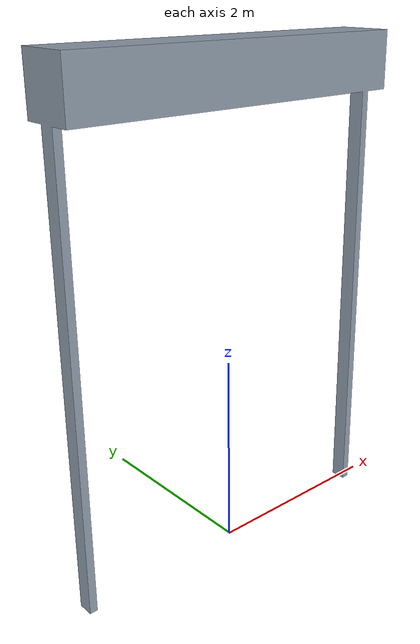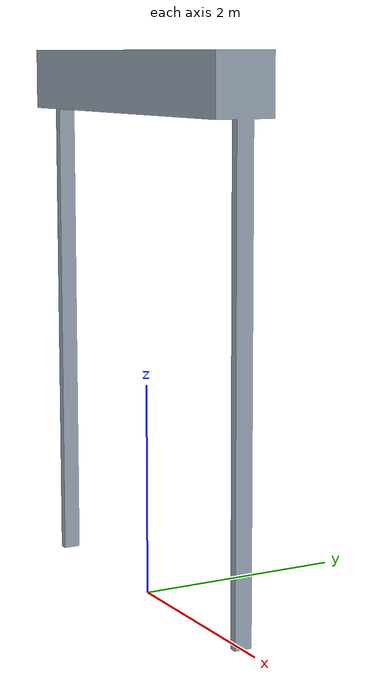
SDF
<?xml version="1.0" ?>
<sdf version="1.7">
  <model name="aws_robomaker_warehouse_DockDoorOpen_01">
    <static>true</static>
    <link name="link">
      <collision name="collision">
        <geometry><mesh><uri>model://aws_robomaker_warehouse_DockDoorOpen_01/meshes/aws_robomaker_warehouse_DockDoorOpen_01_collision.DAE</uri></mesh></geometry>
      </collision>
      <visual name="visual">
        <geometry><mesh><uri>model://aws_robomaker_warehouse_DockDoorOpen_01/meshes/aws_robomaker_warehouse_DockDoorOpen_01_visual.DAE</uri></mesh></geometry>
      </visual>
    </link>
  </model>
</sdf>
